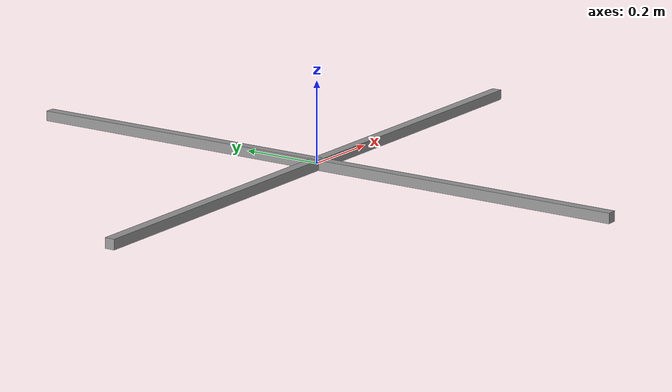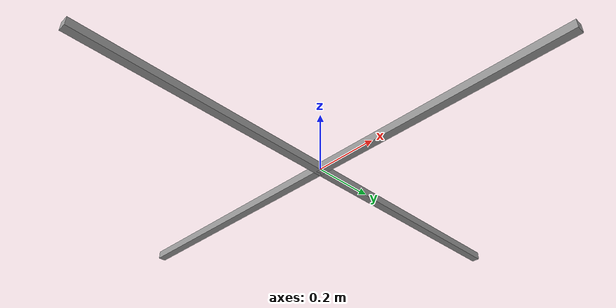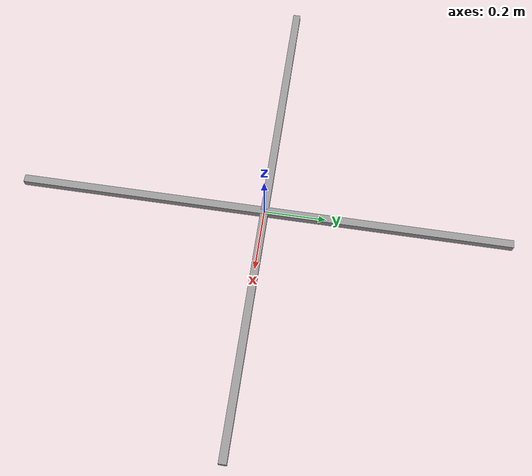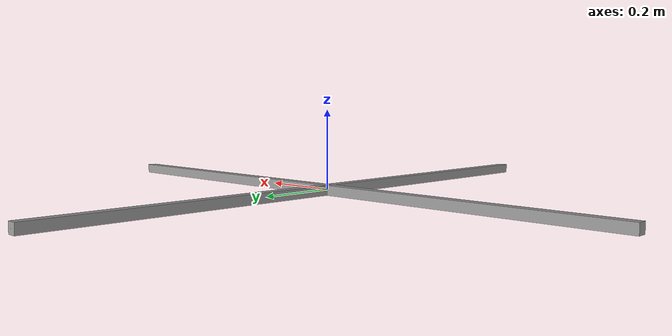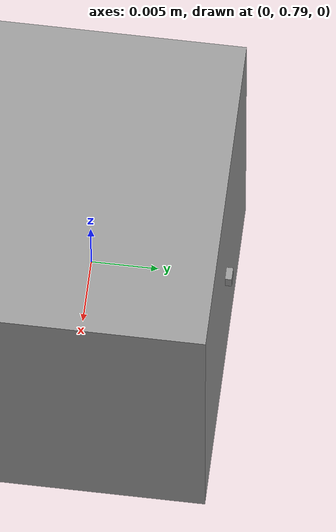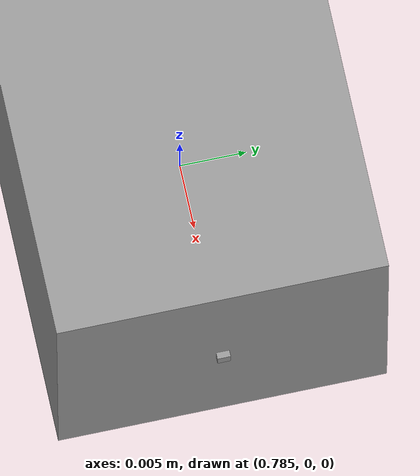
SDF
<?xml version='1.0'?>
<sdf version='1.6'>
  <model name='platform_0'>
    <link name='link_2'>
      <inertial>
        <mass>0.425</mass>
        <inertia>
          <ixx>4.427e-05</ixx>
          <ixy>0</ixy>
          <ixz>0</ixz>
          <iyy>0.0906888</iyy>
          <iyz>0</iyz>
          <izz>0.0906888</izz>
        </inertia>
        <pose>0 0 0 0 -0 0</pose>
      </inertial>
      <pose>0 0 0 0 -0 0</pose>
      <gravity>1</gravity>
      <self_collide>0</self_collide>
      <kinematic>0</kinematic>
      <enable_wind>0</enable_wind>
      <visual name='visual'>
        <pose>0 0 0 0 -0 0</pose>
        <geometry>
          <box>
            <size>1.6 0.025 0.025</size>
          </box>
        </geometry>
        <material>
          <lighting>1</lighting>
          <script>
            <uri>file://media/materials/scripts/gazebo.material</uri>
            <name>Gazebo/Grey</name>
          </script>
          <shader type='pixel'>
            <normal_map>__default__</normal_map>
          </shader>
          <ambient>0.3 0.3 0.3 1</ambient>
          <diffuse>0.7 0.7 0.7 1</diffuse>
          <specular>0.01 0.01 0.01 1</specular>
          <emissive>0 0 0 1</emissive>
        </material>
        <transparency>0</transparency>
        <cast_shadows>1</cast_shadows>
      </visual>
      <collision name='collision'>
        <laser_retro>0</laser_retro>
        <max_contacts>10</max_contacts>
        <pose>0 0 0 0 -0 0</pose>
        <geometry>
          <box>
            <size>1.6 0.025 0.025</size>
          </box>
        </geometry>
        <surface>
          <friction>
            <ode>
              <mu>1</mu>
              <mu2>1</mu2>
              <fdir1>0 0 0</fdir1>
              <slip1>0</slip1>
              <slip2>0</slip2>
            </ode>
            <torsional>
              <coefficient>1</coefficient>
              <patch_radius>0</patch_radius>
              <surface_radius>0</surface_radius>
              <use_patch_radius>1</use_patch_radius>
              <ode>
                <slip>0</slip>
              </ode>
            </torsional>
          </friction>
          <bounce>
            <restitution_coefficient>0</restitution_coefficient>
            <threshold>1e+06</threshold>
          </bounce>
          <contact>
            <collide_without_contact>0</collide_without_contact>
            <collide_without_contact_bitmask>1</collide_without_contact_bitmask>
            <collide_bitmask>1</collide_bitmask>
            <ode>
              <soft_cfm>0</soft_cfm>
              <soft_erp>0.2</soft_erp>
              <kp>1e+13</kp>
              <kd>1</kd>
              <max_vel>0.01</max_vel>
              <min_depth>0</min_depth>
            </ode>
            <bullet>
              <split_impulse>1</split_impulse>
              <split_impulse_penetration_threshold>-0.01</split_impulse_penetration_threshold>
              <soft_cfm>0</soft_cfm>
              <soft_erp>0.2</soft_erp>
              <kp>1e+13</kp>
              <kd>1</kd>
            </bullet>
          </contact>
        </surface>
      </collision>
    </link>
    <link name='link_0'>
      <inertial>
        <mass>1e-05</mass>
        <inertia>
          <ixx>0</ixx>
          <ixy>0</ixy>
          <ixz>0</ixz>
          <iyy>0</iyy>
          <iyz>0</iyz>
          <izz>0</izz>
        </inertia>
        <pose>0 0 0 0 -0 0</pose>
      </inertial>
      <pose>0.8 0 -0 0 -0 2e-06</pose>
      <gravity>1</gravity>
      <self_collide>0</self_collide>
      <kinematic>0</kinematic>
      <enable_wind>0</enable_wind>
      <visual name='visual'>
        <pose>0 0 0 0 -0 0</pose>
        <geometry>
          <box>
            <size>0.001 0.001 0.001</size>
          </box>
        </geometry>
        <material>
          <lighting>1</lighting>
          <script>
            <uri>file://media/materials/scripts/gazebo.material</uri>
            <name>Gazebo/Grey</name>
          </script>
          <shader type='pixel'>
            <normal_map>__default__</normal_map>
          </shader>
          <ambient>0.3 0.3 0.3 1</ambient>
          <diffuse>0.7 0.7 0.7 1</diffuse>
          <specular>0.01 0.01 0.01 1</specular>
          <emissive>0 0 0 1</emissive>
        </material>
        <transparency>0</transparency>
        <cast_shadows>1</cast_shadows>
      </visual>
      <collision name='collision'>
        <laser_retro>0</laser_retro>
        <max_contacts>10</max_contacts>
        <pose>0 0 0 0 -0 0</pose>
        <geometry>
          <box>
            <size>0.001 0.001 0.001</size>
          </box>
        </geometry>
        <surface>
          <friction>
            <ode>
              <mu>1</mu>
              <mu2>1</mu2>
              <fdir1>0 0 0</fdir1>
              <slip1>0</slip1>
              <slip2>0</slip2>
            </ode>
            <torsional>
              <coefficient>1</coefficient>
              <patch_radius>0</patch_radius>
              <surface_radius>0</surface_radius>
              <use_patch_radius>1</use_patch_radius>
              <ode>
                <slip>0</slip>
              </ode>
            </torsional>
          </friction>
          <bounce>
            <restitution_coefficient>0</restitution_coefficient>
            <threshold>1e+06</threshold>
          </bounce>
          <contact>
            <collide_without_contact>0</collide_without_contact>
            <collide_without_contact_bitmask>1</collide_without_contact_bitmask>
            <collide_bitmask>1</collide_bitmask>
            <ode>
              <soft_cfm>0</soft_cfm>
              <soft_erp>0.2</soft_erp>
              <kp>1e+13</kp>
              <kd>1</kd>
              <max_vel>0.01</max_vel>
              <min_depth>0</min_depth>
            </ode>
            <bullet>
              <split_impulse>1</split_impulse>
              <split_impulse_penetration_threshold>-0.01</split_impulse_penetration_threshold>
              <soft_cfm>0</soft_cfm>
              <soft_erp>0.2</soft_erp>
              <kp>1e+13</kp>
              <kd>1</kd>
            </bullet>
          </contact>
        </surface>
      </collision>
    </link>
    <link name='link_0_0'>
      <inertial>
        <mass>1e-05</mass>
        <inertia>
          <ixx>1.67e-06</ixx>
          <ixy>0</ixy>
          <ixz>0</ixz>
          <iyy>1.67e-06</iyy>
          <iyz>0</iyz>
          <izz>1.67e-06</izz>
        </inertia>
        <pose>0 0 0 0 -0 0</pose>
      </inertial>
      <pose>-0.7993 -0 0 0 -0 0</pose>
      <gravity>1</gravity>
      <self_collide>0</self_collide>
      <kinematic>0</kinematic>
      <enable_wind>0</enable_wind>
      <visual name='visual'>
        <pose>0 0 0 0 -0 0</pose>
        <geometry>
          <box>
            <size>0.001 0.001 0.001</size>
          </box>
        </geometry>
        <material>
          <lighting>1</lighting>
          <script>
            <uri>file://media/materials/scripts/gazebo.material</uri>
            <name>Gazebo/Grey</name>
          </script>
          <shader type='pixel'>
            <normal_map>__default__</normal_map>
          </shader>
          <ambient>0.3 0.3 0.3 1</ambient>
          <diffuse>0.7 0.7 0.7 1</diffuse>
          <specular>0.01 0.01 0.01 1</specular>
          <emissive>0 0 0 1</emissive>
        </material>
        <transparency>0</transparency>
        <cast_shadows>1</cast_shadows>
      </visual>
      <collision name='collision'>
        <laser_retro>0</laser_retro>
        <max_contacts>10</max_contacts>
        <pose>0 0 0 0 -0 0</pose>
        <geometry>
          <box>
            <size>0 0 0</size>
          </box>
        </geometry>
        <surface>
          <friction>
            <ode>
              <mu>1</mu>
              <mu2>1</mu2>
              <fdir1>0 0 0</fdir1>
              <slip1>0</slip1>
              <slip2>0</slip2>
            </ode>
            <torsional>
              <coefficient>1</coefficient>
              <patch_radius>0</patch_radius>
              <surface_radius>0</surface_radius>
              <use_patch_radius>1</use_patch_radius>
              <ode>
                <slip>0</slip>
              </ode>
            </torsional>
          </friction>
          <bounce>
            <restitution_coefficient>0</restitution_coefficient>
            <threshold>1e+06</threshold>
          </bounce>
          <contact>
            <collide_without_contact>0</collide_without_contact>
            <collide_without_contact_bitmask>1</collide_without_contact_bitmask>
            <collide_bitmask>1</collide_bitmask>
            <ode>
              <soft_cfm>0</soft_cfm>
              <soft_erp>0.2</soft_erp>
              <kp>1e+13</kp>
              <kd>1</kd>
              <max_vel>0.01</max_vel>
              <min_depth>0</min_depth>
            </ode>
            <bullet>
              <split_impulse>1</split_impulse>
              <split_impulse_penetration_threshold>-0.01</split_impulse_penetration_threshold>
              <soft_cfm>0</soft_cfm>
              <soft_erp>0.2</soft_erp>
              <kp>1e+13</kp>
              <kd>1</kd>
            </bullet>
          </contact>
        </surface>
      </collision>
    </link>
    <link name='link_1'>
      <inertial>
        <mass>1e-05</mass>
        <inertia>
          <ixx>1.67e-06</ixx>
          <ixy>0</ixy>
          <ixz>0</ixz>
          <iyy>1.67e-06</iyy>
          <iyz>0</iyz>
          <izz>1.67e-06</izz>
        </inertia>
        <pose>0 0 0 0 -0 0</pose>
      </inertial>
      <pose>0 0.8 0 0 -0 0</pose>
      <gravity>1</gravity>
      <self_collide>0</self_collide>
      <kinematic>0</kinematic>
      <enable_wind>0</enable_wind>
      <visual name='visual'>
        <pose>0 0 0 0 -0 0</pose>
        <geometry>
          <box>
            <size>0.001 0.001 0.001</size>
          </box>
        </geometry>
        <material>
          <lighting>1</lighting>
          <script>
            <uri>file://media/materials/scripts/gazebo.material</uri>
            <name>Gazebo/Grey</name>
          </script>
          <shader type='pixel'>
            <normal_map>__default__</normal_map>
          </shader>
          <ambient>0.3 0.3 0.3 1</ambient>
          <diffuse>0.7 0.7 0.7 1</diffuse>
          <specular>0.01 0.01 0.01 1</specular>
          <emissive>0 0 0 1</emissive>
        </material>
        <transparency>0</transparency>
        <cast_shadows>1</cast_shadows>
      </visual>
      <collision name='collision'>
        <laser_retro>0</laser_retro>
        <max_contacts>10</max_contacts>
        <pose>0 0 0 0 -0 0</pose>
        <geometry>
          <box>
            <size>0.001 0.001 0.001</size>
          </box>
        </geometry>
        <surface>
          <friction>
            <ode>
              <mu>1</mu>
              <mu2>1</mu2>
              <fdir1>0 0 0</fdir1>
              <slip1>0</slip1>
              <slip2>0</slip2>
            </ode>
            <torsional>
              <coefficient>1</coefficient>
              <patch_radius>0</patch_radius>
              <surface_radius>0</surface_radius>
              <use_patch_radius>1</use_patch_radius>
              <ode>
                <slip>0</slip>
              </ode>
            </torsional>
          </friction>
          <bounce>
            <restitution_coefficient>0</restitution_coefficient>
            <threshold>1e+06</threshold>
          </bounce>
          <contact>
            <collide_without_contact>0</collide_without_contact>
            <collide_without_contact_bitmask>1</collide_without_contact_bitmask>
            <collide_bitmask>1</collide_bitmask>
            <ode>
              <soft_cfm>0</soft_cfm>
              <soft_erp>0.2</soft_erp>
              <kp>1e+13</kp>
              <kd>1</kd>
              <max_vel>0.01</max_vel>
              <min_depth>0</min_depth>
            </ode>
            <bullet>
              <split_impulse>1</split_impulse>
              <split_impulse_penetration_threshold>-0.01</split_impulse_penetration_threshold>
              <soft_cfm>0</soft_cfm>
              <soft_erp>0.2</soft_erp>
              <kp>1e+13</kp>
              <kd>1</kd>
            </bullet>
          </contact>
        </surface>
      </collision>
    </link>
    <link name='link_1_0'>
      <inertial>
        <mass>1e-05</mass>
        <inertia>
          <ixx>0</ixx>
          <ixy>0</ixy>
          <ixz>0</ixz>
          <iyy>0</iyy>
          <iyz>0</iyz>
          <izz>0</izz>
        </inertia>
        <pose>0 0 0 0 -0 0</pose>
      </inertial>
      <pose>-0 -0.7993 -0 0 -0 0</pose>
      <gravity>1</gravity>
      <self_collide>0</self_collide>
      <kinematic>0</kinematic>
      <enable_wind>0</enable_wind>
      <visual name='visual'>
        <pose>0 0 0 0 -0 0</pose>
        <geometry>
          <box>
            <size>0.001 0.001 0.001</size>
          </box>
        </geometry>
        <material>
          <lighting>1</lighting>
          <script>
            <uri>file://media/materials/scripts/gazebo.material</uri>
            <name>Gazebo/Grey</name>
          </script>
          <shader type='pixel'>
            <normal_map>__default__</normal_map>
          </shader>
          <ambient>0.3 0.3 0.3 1</ambient>
          <diffuse>0.7 0.7 0.7 1</diffuse>
          <specular>0.01 0.01 0.01 1</specular>
          <emissive>0 0 0 1</emissive>
        </material>
        <transparency>0</transparency>
        <cast_shadows>1</cast_shadows>
      </visual>
      <collision name='collision'>
        <laser_retro>0</laser_retro>
        <max_contacts>10</max_contacts>
        <pose>0 0 0 0 -0 0</pose>
        <geometry>
          <box>
            <size>0.001 0.001 0.001</size>
          </box>
        </geometry>
        <surface>
          <friction>
            <ode>
              <mu>1</mu>
              <mu2>1</mu2>
              <fdir1>0 0 0</fdir1>
              <slip1>0</slip1>
              <slip2>0</slip2>
            </ode>
            <torsional>
              <coefficient>1</coefficient>
              <patch_radius>0</patch_radius>
              <surface_radius>0</surface_radius>
              <use_patch_radius>1</use_patch_radius>
              <ode>
                <slip>0</slip>
              </ode>
            </torsional>
          </friction>
          <bounce>
            <restitution_coefficient>0</restitution_coefficient>
            <threshold>1e+06</threshold>
          </bounce>
          <contact>
            <collide_without_contact>0</collide_without_contact>
            <collide_without_contact_bitmask>1</collide_without_contact_bitmask>
            <collide_bitmask>1</collide_bitmask>
            <ode>
              <soft_cfm>0</soft_cfm>
              <soft_erp>0.2</soft_erp>
              <kp>1e+13</kp>
              <kd>1</kd>
              <max_vel>0.01</max_vel>
              <min_depth>0</min_depth>
            </ode>
            <bullet>
              <split_impulse>1</split_impulse>
              <split_impulse_penetration_threshold>-0.01</split_impulse_penetration_threshold>
              <soft_cfm>0</soft_cfm>
              <soft_erp>0.2</soft_erp>
              <kp>1e+13</kp>
              <kd>1</kd>
            </bullet>
          </contact>
        </surface>
      </collision>
    </link>
    <link name='link_3'>
      <inertial>
        <mass>0.425</mass>
        <inertia>
          <ixx>0.0906888</ixx>
          <ixy>0</ixy>
          <ixz>0</ixz>
          <iyy>4.427e-05</iyy>
          <iyz>0</iyz>
          <izz>0.0906888</izz>
        </inertia>
        <pose>0 0 0 0 -0 0</pose>
      </inertial>
      <pose>0 0 0 0 -0 0</pose>
      <gravity>1</gravity>
      <self_collide>0</self_collide>
      <kinematic>0</kinematic>
      <enable_wind>0</enable_wind>
      <visual name='visual'>
        <pose>0 0 0 0 -0 0</pose>
        <geometry>
          <box>
            <size>0.025 1.6 0.025</size>
          </box>
        </geometry>
        <material>
          <lighting>1</lighting>
          <script>
            <uri>file://media/materials/scripts/gazebo.material</uri>
            <name>Gazebo/Grey</name>
          </script>
          <shader type='pixel'>
            <normal_map>__default__</normal_map>
          </shader>
          <ambient>0.3 0.3 0.3 1</ambient>
          <diffuse>0.7 0.7 0.7 1</diffuse>
          <specular>0.01 0.01 0.01 1</specular>
          <emissive>0 0 0 1</emissive>
        </material>
        <transparency>0</transparency>
        <cast_shadows>1</cast_shadows>
      </visual>
      <collision name='collision'>
        <laser_retro>0</laser_retro>
        <max_contacts>10</max_contacts>
        <pose>0 0 0 0 -0 0</pose>
        <geometry>
          <box>
            <size>0.025 1.6 0.025</size>
          </box>
        </geometry>
        <surface>
          <friction>
            <ode>
              <mu>1</mu>
              <mu2>1</mu2>
              <fdir1>0 0 0</fdir1>
              <slip1>0</slip1>
              <slip2>0</slip2>
            </ode>
            <torsional>
              <coefficient>1</coefficient>
              <patch_radius>0</patch_radius>
              <surface_radius>0</surface_radius>
              <use_patch_radius>1</use_patch_radius>
              <ode>
                <slip>0</slip>
              </ode>
            </torsional>
          </friction>
          <bounce>
            <restitution_coefficient>0</restitution_coefficient>
            <threshold>1e+06</threshold>
          </bounce>
          <contact>
            <collide_without_contact>0</collide_without_contact>
            <collide_without_contact_bitmask>1</collide_without_contact_bitmask>
            <collide_bitmask>1</collide_bitmask>
            <ode>
              <soft_cfm>0</soft_cfm>
              <soft_erp>0.2</soft_erp>
              <kp>1e+13</kp>
              <kd>1</kd>
              <max_vel>0.01</max_vel>
              <min_depth>0</min_depth>
            </ode>
            <bullet>
              <split_impulse>1</split_impulse>
              <split_impulse_penetration_threshold>-0.01</split_impulse_penetration_threshold>
              <soft_cfm>0</soft_cfm>
              <soft_erp>0.2</soft_erp>
              <kp>1e+13</kp>
              <kd>1</kd>
            </bullet>
          </contact>
        </surface>
      </collision>
    </link>
    <joint name='link_2_JOINT_0_0' type='revolute'>
      <parent>link_2</parent>
      <child>link_0</child>
      <pose>0 0 0 0 -0 0</pose>
      <axis>
        <xyz>1 0 0</xyz>
        <limit>
          <lower>-1.79769e+308</lower>
          <upper>1.79769e+308</upper>
          <effort>-1</effort>
          <velocity>-1</velocity>
        </limit>
        <dynamics>
          <spring_reference>0</spring_reference>
          <spring_stiffness>0</spring_stiffness>
          <damping>0</damping>
        </dynamics>
      </axis>
      <physics>
        <ode>
          <limit>
            <cfm>0</cfm>
            <erp>0.2</erp>
          </limit>
          <suspension>
            <cfm>0</cfm>
            <erp>0.2</erp>
          </suspension>
        </ode>
      </physics>
    </joint>
    <joint name='link_2_JOINT_0' type='revolute'>
      <parent>link_2</parent>
      <child>link_3</child>
      <pose>0 0 0 0 -0 0</pose>
      <axis>
        <xyz>0 0 1</xyz>
        <limit>
          <lower>-1.79769e+308</lower>
          <upper>1.79769e+308</upper>
          <effort>-1</effort>
          <velocity>-1</velocity>
        </limit>
        <dynamics>
          <spring_reference>0</spring_reference>
          <spring_stiffness>0</spring_stiffness>
          <damping>0</damping>
          <friction>0</friction>
        </dynamics>
      </axis>
      <physics>
        <ode>
          <limit>
            <cfm>0</cfm>
            <erp>0.2</erp>
          </limit>
          <suspension>
            <cfm>0</cfm>
            <erp>0.2</erp>
          </suspension>
        </ode>
      </physics>
    </joint>
    <joint name='link_2_JOINT_2' type='revolute'>
      <parent>link_2</parent>
      <child>link_0_0</child>
      <pose>0 0 0 0 -0 0</pose>
      <axis>
        <xyz>1 0 0</xyz>
        <limit>
          <lower>-1.79769e+308</lower>
          <upper>1.79769e+308</upper>
          <effort>-1</effort>
          <velocity>-1</velocity>
        </limit>
        <dynamics>
          <spring_reference>0</spring_reference>
          <spring_stiffness>0</spring_stiffness>
          <damping>0</damping>
        </dynamics>
      </axis>
      <physics>
        <ode>
          <limit>
            <cfm>0</cfm>
            <erp>0.2</erp>
          </limit>
          <suspension>
            <cfm>0</cfm>
            <erp>0.2</erp>
          </suspension>
        </ode>
      </physics>
    </joint>
    <joint name='link_3_JOINT_1' type='revolute'>
      <parent>link_3</parent>
      <child>link_1</child>
      <pose>0 0 0 0 -0 0</pose>
      <axis>
        <xyz>0 1 0</xyz>
        <limit>
          <lower>-1.79769e+308</lower>
          <upper>1.79769e+308</upper>
          <effort>-1</effort>
          <velocity>-1</velocity>
        </limit>
        <dynamics>
          <spring_reference>0</spring_reference>
          <spring_stiffness>0</spring_stiffness>
          <damping>0</damping>
        </dynamics>
      </axis>
      <physics>
        <ode>
          <limit>
            <cfm>0</cfm>
            <erp>0.2</erp>
          </limit>
          <suspension>
            <cfm>0</cfm>
            <erp>0.2</erp>
          </suspension>
        </ode>
      </physics>
    </joint>
    <joint name='link_3_JOINT_4' type='revolute'>
      <parent>link_3</parent>
      <child>link_1_0</child>
      <pose>0 0 0 0 -0 0</pose>
      <axis>
        <xyz>0 1 0</xyz>
        <limit>
          <lower>-1.79769e+308</lower>
          <upper>1.79769e+308</upper>
          <effort>-1</effort>
          <velocity>-1</velocity>
        </limit>
        <dynamics>
          <spring_reference>0</spring_reference>
          <spring_stiffness>0</spring_stiffness>
          <damping>0</damping>
        </dynamics>
      </axis>
      <physics>
        <ode>
          <limit>
            <cfm>0</cfm>
            <erp>0.2</erp>
          </limit>
          <suspension>
            <cfm>0</cfm>
            <erp>0.2</erp>
          </suspension>
        </ode>
      </physics>
    </joint>
    <static>0</static>
    <allow_auto_disable>1</allow_auto_disable>
  </model>
</sdf>
